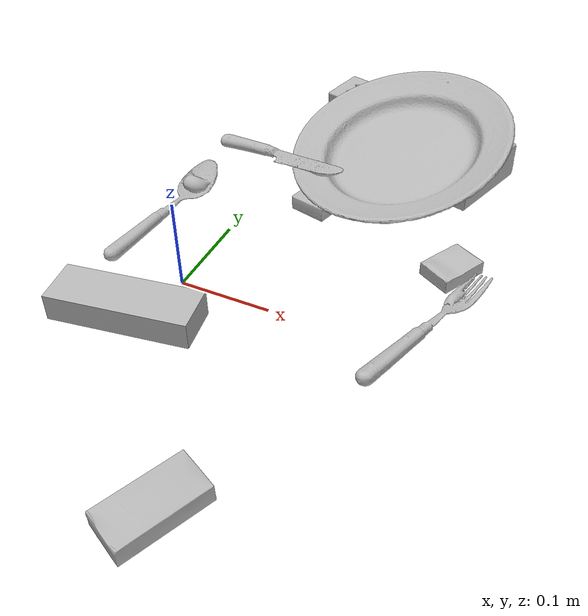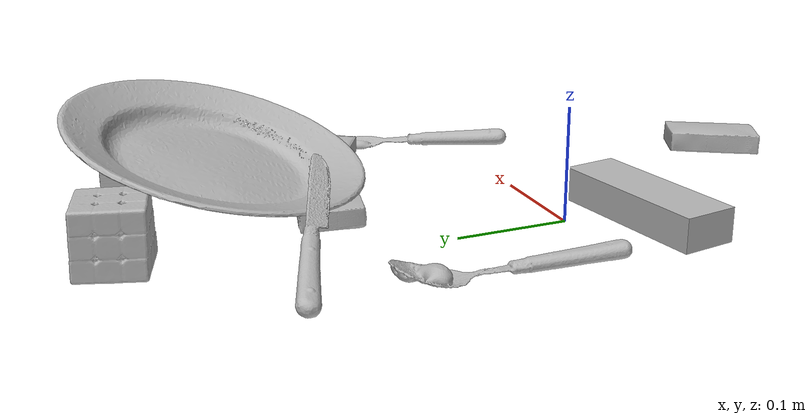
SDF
<sdf version="1.4">
  <world name="default">
    <light name="light1" type="point">
      <pose>0 0 1 0 0 0</pose>
      <diffuse>3 3 3 1</diffuse>
      <specular>3 3 3 1</specular>
    </light>
    <light name="light2" type="point">
      <pose>0 0.5 2 0 0 0</pose>
      <diffuse>1 1 1 1</diffuse>
      <specular>1 1 1 1</specular>
    </light>
    <light name="light3" type="point">
      <pose>0 0.5 2 0 0 0</pose>
      <diffuse>3 3 3 1</diffuse>
      <specular>3 3 3 1</specular>
    </light>
    <scene>
      <ambient>0.7 0.7 0.7</ambient>
    </scene>
    <model name="box11">
      <link name="link_box11">
        <collision name="default">
          <geometry>
            <mesh>
              <uri>model://rubiks_cube/collision_meshes/collision.obj</uri>
              <scale>1.0 1.0 1.0</scale>
            </mesh>
          </geometry>
          <surface>
            <friction>
              <ode>
                <mu>0.5</mu>
                <mu2>0.5</mu2>
              </ode>
            </friction>
          <contact>
        <ode>
            <max_vel>0</max_vel>
            <min_depth>0.0001</min_depth>
            <kp>1e8</kp>
        </ode>
    </contact></surface>
        </collision>
        <visual name="default">
          <geometry>
            <mesh>
              <uri>model://rubiks_cube/visual_meshes/visual.dae</uri>
              <scale>1.0 1.0 1.0</scale>
            </mesh>
          </geometry>
        </visual>
        <inertial>
          <mass>0.14537504315376282</mass>
          <pose>2.6721039830590598e-05 5.2569666877388954e-05 -7.264316082000732e-06 -0.05467316775404926 -0.09814130205097539 -0.03445549690793288</pose>
          <inertia>
            <ixx>8.032947e-05</ixx>
            <iyy>7.9954865e-05</iyy>
            <izz>8.099513e-05</izz>
            <ixy>0</ixy>
            <ixz>0</ixz>
            <iyz>0</iyz>
          </inertia>
        </inertial>
      </link>
      <pose>0.04773518443107605 0.3642485737800598 0.028678815811872482 -9.175810695814483e-06 9.93599110650542e-07 -0.24522630422890004</pose>
    </model>
    <model name="box12">
      <link name="link_box12">
        <collision name="default">
          <geometry>
            <mesh>
              <uri>model://cracker_box/collision_meshes/collision.obj</uri>
              <scale>0.25 0.25 0.25</scale>
            </mesh>
          </geometry>
          <surface>
            <friction>
              <ode>
                <mu>0.5</mu>
                <mu2>0.5</mu2>
              </ode>
            </friction>
          <contact>
        <ode>
            <max_vel>0</max_vel>
            <min_depth>0.0001</min_depth>
            <kp>1e8</kp>
        </ode>
    </contact></surface>
        </collision>
        <visual name="default">
          <geometry>
            <mesh>
              <uri>model://cracker_box/visual_meshes/visual.dae</uri>
              <scale>0.25 0.25 0.25</scale>
            </mesh>
          </geometry>
        </visual>
        <inertial>
          <mass>0.04629049822688103</mass>
          <pose>0.00023660360602661967 6.358561950037256e-05 -0.00042573834070935845 -0.00031620769195764 -0.01110649332573822 0.0025467952358288496</pose>
          <inertia>
            <ixx>7.358898e-06</ixx>
            <iyy>1.2150985e-05</iyy>
            <izz>1.7340568e-05</izz>
            <ixy>0</ixy>
            <ixz>0</ixz>
            <iyz>0</iyz>
          </inertia>
        </inertial>
      </link>
      <pose>0.24886375665664673 0.12924803793430328 0.009096027351915836 -0.014050304687729312 -0.005016869170206919 1.0608802639842672</pose>
    </model>
    <model name="box13">
      <link name="link_box13">
        <collision name="default">
          <geometry>
            <mesh>
              <uri>model://sugar_box/collision_meshes/collision.obj</uri>
              <scale>0.5 0.5 0.5</scale>
            </mesh>
          </geometry>
          <surface>
            <friction>
              <ode>
                <mu>0.5</mu>
                <mu2>0.5</mu2>
              </ode>
            </friction>
          <contact>
        <ode>
            <max_vel>0</max_vel>
            <min_depth>0.0001</min_depth>
            <kp>1e8</kp>
        </ode>
    </contact></surface>
        </collision>
        <visual name="default">
          <geometry>
            <mesh>
              <uri>model://sugar_box/visual_meshes/visual.dae</uri>
              <scale>0.5 0.5 0.5</scale>
            </mesh>
          </geometry>
        </visual>
        <inertial>
          <mass>0.06844717264175415</mass>
          <pose>0.0005171863595023751 1.924554817378521e-05 -0.00018182402709499002 -0.0004046259509043031 0.0010506635218006705 0.0026153792547683827</pose>
          <inertia>
            <ixx>1.4257497e-05</ixx>
            <iyy>4.608316e-05</iyy>
            <izz>5.5167053e-05</izz>
            <ixy>0</ixy>
            <ixz>0</ixz>
            <iyz>0</iyz>
          </inertia>
        </inertial>
      </link>
      <pose>0.12308073043823242 -0.24043156206607819 0.011399301700294018 0.0007753421101477682 -0.023433243121863304 1.1116536971069753</pose>
    </model>
    <model name="box21">
      <link name="link_box21">
        <collision name="default">
          <geometry>
            <mesh>
              <uri>model://wood_block/collision_meshes/collision.obj</uri>
              <scale>0.5 0.5 0.5</scale>
            </mesh>
          </geometry>
          <surface>
            <friction>
              <ode>
                <mu>0.5</mu>
                <mu2>0.5</mu2>
              </ode>
            </friction>
          <contact>
        <ode>
            <max_vel>0</max_vel>
            <min_depth>0.0001</min_depth>
            <kp>1e8</kp>
        </ode>
    </contact></surface>
        </collision>
        <visual name="default">
          <geometry>
            <mesh>
              <uri>model://wood_block/visual_meshes/visual.dae</uri>
              <scale>0.5 0.5 0.5</scale>
            </mesh>
          </geometry>
        </visual>
        <inertial>
          <mass>0.22006426751613617</mass>
          <pose>-2.9066577553749084e-06 -0.00028540476341731846 0.00013204292918089777 -0.05220890442695651 -0.005192696130650637 -0.006861379915905358</pose>
          <inertia>
            <ixx>7.361981e-05</ixx>
            <iyy>0.00023256506</iyy>
            <izz>0.00023169514</izz>
            <ixy>0</ixy>
            <ixz>0</ixz>
            <iyz>0</iyz>
          </inertia>
        </inertial>
      </link>
      <pose>0.22527119517326355 0.29685238003730774 0.022629043087363243 -0.005184916978311446 0.0057231647690489966 1.2625677873499255</pose>
    </model>
    <model name="box22">
      <link name="link_box22">
        <collision name="default">
          <geometry>
            <mesh>
              <uri>model://jenga/collision_meshes/collision.obj</uri>
              <scale>1.0 1.0 1.0</scale>
            </mesh>
          </geometry>
          <surface>
            <friction>
              <ode>
                <mu>0.5</mu>
                <mu2>0.5</mu2>
              </ode>
            </friction>
          <contact>
        <ode>
            <max_vel>0</max_vel>
            <min_depth>0.0001</min_depth>
            <kp>1e8</kp>
        </ode>
    </contact></surface>
        </collision>
        <visual name="default">
          <geometry>
            <mesh>
              <uri>model://jenga/visual_meshes/visual.dae</uri>
              <scale>1.0 1.0 1.0</scale>
            </mesh>
          </geometry>
        </visual>
        <inertial>
          <mass>0.1883949637413025</mass>
          <pose>-2.502855807051674e-07 -0.00010250010382151231 -4.0923405322246253e-05 0.0 -7.342154049184251e-07 0.0</pose>
          <inertia>
            <ixx>5.213346e-05</ixx>
            <iyy>0.0003532549</iyy>
            <izz>0.00037712968</izz>
            <ixy>0</ixy>
            <ixz>0</ixz>
            <iyz>0</iyz>
          </inertia>
        </inertial>
      </link>
      <pose>-0.022590531036257744 -0.06478250026702881 0.014999999664723873 8.996022173725141e-09 -3.4116949280030355e-09 0.15151662960428303</pose>
    </model>
    <model name="box23">
      <link name="link_box23">
        <collision name="default">
          <geometry>
            <mesh>
              <uri>model://pudding_box/collision_meshes/collision.obj</uri>
              <scale>0.5 0.5 0.5</scale>
            </mesh>
          </geometry>
          <surface>
            <friction>
              <ode>
                <mu>0.5</mu>
                <mu2>0.5</mu2>
              </ode>
            </friction>
          <contact>
        <ode>
            <max_vel>0</max_vel>
            <min_depth>0.0001</min_depth>
            <kp>1e8</kp>
        </ode>
    </contact></surface>
        </collision>
        <visual name="default">
          <geometry>
            <mesh>
              <uri>model://pudding_box/visual_meshes/visual.dae</uri>
              <scale>0.5 0.5 0.5</scale>
            </mesh>
          </geometry>
        </visual>
        <inertial>
          <mass>0.030779412016272545</mass>
          <pose>0.00024474109522998333 0.0004033942532259971 -0.0002594413817860186 0.0052131022413302 -0.00660379919873188 0.020079828882866795</pose>
          <inertia>
            <ixx>8.6986365e-06</ixx>
            <iyy>5.8525034e-06</iyy>
            <izz>1.2845808e-05</izz>
            <ixy>0</ixy>
            <ixz>0</ixz>
            <iyz>0</iyz>
          </inertia>
        </inertial>
      </link>
      <pose>0.07536948472261429 0.18352258205413818 0.009967494755983353 0.03651064578002505 0.0016036208656953644 2.9189280229838093</pose>
    </model>
    <model name="plate1">
      <link name="link_plate1">
        <collision name="default">
          <geometry>
            <mesh>
              <uri>model://plate/collision_meshes/collision.obj</uri>
              <scale>1.0 1.0 1.0</scale>
            </mesh>
          </geometry>
          <surface>
            <friction>
              <ode>
                <mu>0.5</mu>
                <mu2>0.5</mu2>
              </ode>
            </friction>
          <contact>
        <ode>
            <max_vel>0</max_vel>
            <min_depth>0.0001</min_depth>
            <kp>1e8</kp>
        </ode>
    </contact></surface>
        </collision>
        <visual name="default">
          <geometry>
            <mesh>
              <uri>model://plate/visual_meshes/visual.dae</uri>
              <scale>1.0 1.0 1.0</scale>
            </mesh>
          </geometry>
        </visual>
        <inertial>
          <mass>0.2551877498626709</mass>
          <pose>-0.0006044633337296546 0.0002782584633678198 -0.0010561984963715076 0.002218758596895186 -0.003225500510611216 0.45261892370472845</pose>
          <inertia>
            <ixx>0.0011937734</ixx>
            <iyy>0.0011823553</iyy>
            <izz>0.002334842</izz>
            <ixy>0</ixy>
            <ixz>0</ixz>
            <iyz>0</iyz>
          </inertia>
        </inertial>
      </link>
      <pose>0.14256364107131958 0.2636857330799103 0.0523519441485405 -0.15454333871825499 0.2427959881972473 -2.780922443958413</pose>
    </model>
    <model name="silverware1">
      <link name="link_silverware1">
        <collision name="default">
          <geometry>
            <mesh>
              <uri>model://knife/collision_meshes/collision.obj</uri>
              <scale>1.0 1.0 1.0</scale>
            </mesh>
          </geometry>
          <surface>
            <friction>
              <ode>
                <mu>0.5</mu>
                <mu2>0.5</mu2>
              </ode>
            </friction>
          <contact>
        <ode>
            <max_vel>0</max_vel>
            <min_depth>0.0001</min_depth>
            <kp>1e8</kp>
        </ode>
    </contact></surface>
        </collision>
        <visual name="default">
          <geometry>
            <mesh>
              <uri>model://knife/visual_meshes/visual.dae</uri>
              <scale>1.0 1.0 1.0</scale>
            </mesh>
          </geometry>
        </visual>
        <inertial>
          <mass>0.030903667211532593</mass>
          <pose>-0.023785250261425972 0.0015275125624611974 5.062023410573602e-05 0.07305665398911224 0.017248417197799442 -0.0074098217442817044</pose>
          <inertia>
            <ixx>8.7717143e-07</ixx>
            <iyy>0.00011872688</iyy>
            <izz>0.000119009375</izz>
            <ixy>0</ixy>
            <ixz>0</ixz>
            <iyz>0</iyz>
          </inertia>
        </inertial>
      </link>
      <pose>0.0012258868664503098 0.21950438618659973 0.028614023700356483 0.3371558883478922 -0.22170449852193205 -0.35788185687516155</pose>
    </model>
    <model name="silverware2">
      <link name="link_silverware2">
        <collision name="default">
          <geometry>
            <mesh>
              <uri>model://spoon/collision_meshes/collision.obj</uri>
              <scale>1.0 1.0 1.0</scale>
            </mesh>
          </geometry>
          <surface>
            <friction>
              <ode>
                <mu>0.5</mu>
                <mu2>0.5</mu2>
              </ode>
            </friction>
          <contact>
        <ode>
            <max_vel>0</max_vel>
            <min_depth>0.0001</min_depth>
            <kp>1e8</kp>
        </ode>
    </contact></surface>
        </collision>
        <visual name="default">
          <geometry>
            <mesh>
              <uri>model://spoon/visual_meshes/visual.dae</uri>
              <scale>1.0 1.0 1.0</scale>
            </mesh>
          </geometry>
        </visual>
        <inertial>
          <mass>0.020994963124394417</mass>
          <pose>-0.005526323337107897 -0.00160341733135283 -0.0007271658978424966 0.035216710718480135 -0.03906584501417282 0.00615060951780049</pose>
          <inertia>
            <ixx>1.1677738e-06</ixx>
            <iyy>7.988513e-05</iyy>
            <izz>8.046103e-05</izz>
            <ixy>0</ixy>
            <ixz>0</ixz>
            <iyz>0</iyz>
          </inertia>
        </inertial>
      </link>
      <pose>-0.08197635412216187 0.09127624332904816 0.008385262452065945 0.006731732022921007 0.026892988472582372 1.4844196130675449</pose>
    </model>
    <model name="silverware3">
      <link name="link_silverware3">
        <collision name="default">
          <geometry>
            <mesh>
              <uri>model://fork/collision_meshes/collision.obj</uri>
              <scale>1.0 1.0 1.0</scale>
            </mesh>
          </geometry>
          <surface>
            <friction>
              <ode>
                <mu>0.5</mu>
                <mu2>0.5</mu2>
              </ode>
            </friction>
          <contact>
        <ode>
            <max_vel>0</max_vel>
            <min_depth>0.0001</min_depth>
            <kp>1e8</kp>
        </ode>
    </contact></surface>
        </collision>
        <visual name="default">
          <geometry>
            <mesh>
              <uri>model://fork/visual_meshes/visual.dae</uri>
              <scale>1.0 1.0 1.0</scale>
            </mesh>
          </geometry>
        </visual>
        <inertial>
          <mass>0.012144052423536777</mass>
          <pose>-0.029570043087005615 0.0004658822144847363 0.0003218860656488687 -0.013551171335247731 -0.01097783699854739 0.014453902564514984</pose>
          <inertia>
            <ixx>4.257177e-07</ixx>
            <iyy>3.170462e-05</iyy>
            <izz>3.1895037e-05</izz>
            <ixy>0</ixy>
            <ixz>0</ixz>
            <iyz>0</iyz>
          </inertia>
        </inertial>
      </link>
      <pose>0.2528356909751892 0.03729170560836792 0.005668552126735449 -0.17351584523866576 0.025718512173272284 1.22573324529354</pose>
    </model>
  <physics type="ode">
      <max_contacts>50</max_contacts>
      <ode>
        <solver>
          <type>quick</type>
          <iters>75</iters>
        </solver>
        <constraints>
          <contact_max_correcting_vel>0</contact_max_correcting_vel>
          <contact_surface_layer>0</contact_surface_layer>
        </constraints>
      </ode>
    </physics></world>
</sdf>
